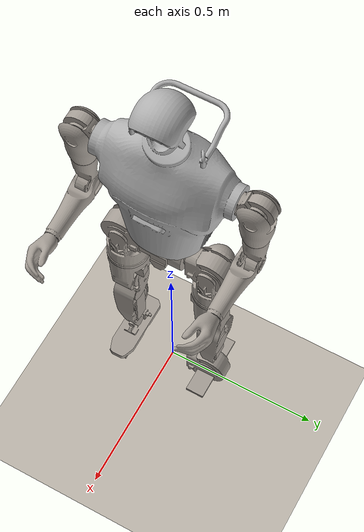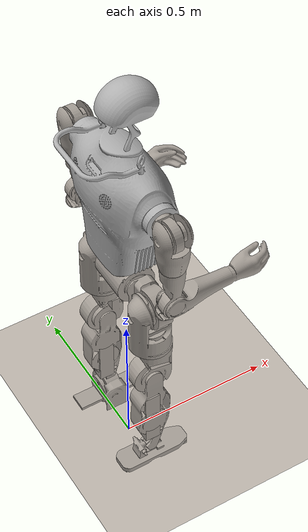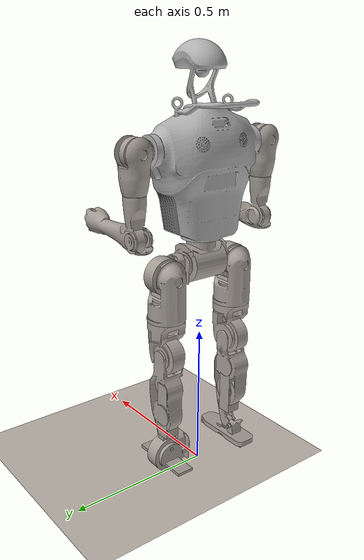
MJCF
<mujoco model="e3 scene">
  <include file="e3.xml"/>

  <statistic center="1.0 0.7 1.0" extent="0.8"/>

  <visual>
    <!-- 保留 headlight 配置（可按需微调） -->
    <headlight diffuse="0.6 0.6 0.6" ambient="0.15 0.15 0.15" specular="0.9 0.9 0.9"/>
    <!-- 让场景雾/大气更淡（可选） -->
    <rgba haze="0.0 0.0 0.0 1"/>
    <!-- 白色天空：把 skybox 的 rgb1/rgb2 设为白 -->
    <global azimuth="-140" elevation="-20"/>
  </visual>

  <asset>
    <!-- white skybox (flat white) -->
    <texture type="skybox" builtin="flat" rgb1="1 1 1" rgb2="1 1 1" width="512" height="3072"/>

    <!-- ground texture from your photo; place flooring2.png next to scene.xml (or use absolute path) -->
    <texture name="floor_tex" type="2d" file="flooring2.png"/>
    <!-- material that uses the texture; texuniform=true 保持纹理颜色不被 RGBA 染色，texrepeat 可调 -->
    <!-- texrepeat 值越小，纹理越大（重复次数越少）；值越大，纹理越小（重复次数越多） -->
    <material name="floor_mat" texture="floor_tex" texuniform="true" texrepeat="1 1" reflectance="0.2"/>

    <!-- 保留以前的 groundplane checker 作为备用（可删） -->
    <texture type="2d" name="groundplane" builtin="checker" mark="edge" rgb1="0.2 0.3 0.4" rgb2="0.1 0.2 0.3" markrgb="0.8 0.8 0.8" width="300" height="300"/>
    <material name="groundplane" texture="groundplane" texuniform="true" texrepeat="5 5" reflectance="0.2"/>
  </asset>

  <worldbody>
    <light pos="1 0 3.5" dir="0 0 -1" directional="true"/>
    <!-- 用 floor_mat 替换原来的 groundplane 材质 -->
    <geom name="floor" size="0 0 0.05" type="plane" material="floor_mat"/>
  </worldbody>
</mujoco>

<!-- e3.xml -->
<mujoco model="e3">
  <compiler angle="radian" meshdir="meshes/"/>

  <asset>
    <mesh name="pelvis" file="pelvis.STL"/>
    <mesh name="torso_link" file="torso_link.STL"/>
    <mesh name="leg_l1_link" file="leg_l1_link.STL"/>
    <mesh name="leg_l2_link_144" file="leg_l2_link_144.STL"/>
    <mesh name="leg_l3_link_144" file="leg_l3_link_144.STL"/>
    <mesh name="leg_l4_link" file="leg_l4_link.STL"/>
    <mesh name="leg_l5_link" file="leg_l5_link.STL"/>
    <mesh name="leg_l6_link" file="leg_l6_link.STL"/>
    <mesh name="leg_r1_link" file="leg_r1_link.STL"/>
    <mesh name="leg_r2_link_144" file="leg_r2_link_144.STL"/>
    <mesh name="leg_r3_link_144" file="leg_r3_link_144.STL"/>
    <mesh name="leg_r4_link" file="leg_r4_link.STL"/>
    <mesh name="leg_r5_link" file="leg_r5_link.STL"/>
    <mesh name="leg_r6_link" file="leg_r6_link.STL"/>
    <mesh name="arm_l1_link" file="arm_l1_link.STL"/>
    <mesh name="arm_l2_link" file="arm_l2_link.STL"/>
    <mesh name="arm_l3_link" file="arm_l3_link.STL"/>
    <mesh name="arm_l4_link" file="arm_l4_link.STL"/>
    <mesh name="arm_r1_link" file="arm_r1_link.STL"/>
    <mesh name="arm_r2_link" file="arm_r2_link.STL"/>
    <mesh name="arm_r3_link" file="arm_r3_link.STL"/>
    <mesh name="arm_r4_link" file="arm_r4_link.STL"/>
  </asset>

  <worldbody>
    <body name="pelvis_link" pos="0 0 0.76">
      <inertial pos="0.00050701 0.000302409 0.0356883" quat="0.999935 -0.0102796 -0.0049011 2.38871e-05" mass="5.12983" diaginertia="0.0228778 0.0195299 0.0120798"/>
      <joint name="floating_base_joint" type="free" limited="false" actuatorfrclimited="false"/>
      <geom type="mesh" contype="0" conaffinity="0" group="1" density="0" rgba="0.64706 0.61961 0.58824 1" mesh="pelvis"/>
      <geom type="mesh" rgba="0.64706 0.61961 0.58824 1" mesh="pelvis"/>
      <geom size="0.0075 0.0075 0.002" type="box" contype="0" conaffinity="0" group="1" density="0"/>

      <body name="left_hip_pitch_link" pos="0 0.1413 0">
        <inertial pos="0.011949 -0.00848 -0.026594" quat="0.79686 0.59057 -0.0942392 0.0857855" mass="1.8169" diaginertia="0.00165401 0.0016345 0.000897494"/>
        <joint name="left_hip_pitch_joint" pos="0 0 0" axis="0 1 0" range="-2.53 2.53" actuatorfrcrange="-144 144"/>
        <geom type="mesh" contype="0" conaffinity="0" group="1" density="0" rgba="0.64706 0.61961 0.58824 1" mesh="leg_l1_link"/>
        <geom type="mesh" rgba="0.64706 0.61961 0.58824 1" mesh="leg_l1_link"/>
        <body name="left_hip_roll_link" pos="0 0 -0.0285">
          <inertial pos="-0.002932 9.8e-05 -0.097396" quat="0.704761 -0.0466741 -0.0480729 0.706273" mass="2.26145" diaginertia="0.00637801 0.00565479 0.00437919"/>
          <joint name="left_hip_roll_joint" pos="0 0 0" axis="1 0 0" range="-0.611 3.23" actuatorfrcrange="-144 144"/>
          <geom type="mesh" contype="0" conaffinity="0" group="1" density="0" rgba="0.64706 0.61961 0.58824 1" mesh="leg_l2_link_144"/>
          <geom type="mesh" rgba="0.64706 0.61961 0.58824 1" mesh="leg_l2_link_144"/>
          <body name="left_hip_yaw_link" pos="0 0 -0.1458">
            <inertial pos="-0.001336 -0.000844 -0.104378" quat="0.678415 0.0561291 0.0503848 0.730797" mass="2.23322" diaginertia="0.00570127 0.00547716 0.00188058"/>
            <joint name="left_hip_yaw_joint" pos="0 0 0" axis="0 0 1" range="-1.05 1.05" actuatorfrcrange="-144 144"/>
            <geom type="mesh" contype="0" conaffinity="0" group="1" density="0" rgba="0.64706 0.61961 0.58824 1" mesh="leg_l3_link_144"/>
            <geom type="mesh" rgba="0.64706 0.61961 0.58824 1" mesh="leg_l3_link_144"/>
            <body name="left_knee_link" pos="-0.008 0 -0.1317">
              <inertial pos="0.001004 0.001585 -0.170623" quat="0.724379 -0.0187492 -0.000974962 0.689146" mass="2.88975" diaginertia="0.0212478 0.0206397 0.0028045"/>
              <joint name="left_knee_joint" pos="0 0 0" axis="0 1 0" range="-0.349 2.355" actuatorfrcrange="-144 144"/>
              <geom type="mesh" contype="0" conaffinity="0" group="1" density="0" rgba="0.64706 0.61961 0.58824 1" mesh="leg_l4_link"/>
              <geom size="0.025 0.025 0.1" pos="0 0 -0.2" type="box" rgba="0.64706 0.61961 0.58824 1"/>
              <body name="left_ankle_pitch_link" pos="0 0 -0.35">
                <inertial pos="0 0 0" quat="0 0.707107 0 0.707107" mass="0.088534" diaginertia="3.1681e-05 3.1274e-05 3.0975e-05"/>
                <joint name="left_ankle_pitch_joint" pos="0 0 0" axis="0 1 0" range="-0.785 1.05" actuatorfrcrange="-48 48"/>
                <geom type="mesh" contype="0" conaffinity="0" group="1" density="0" rgba="0.64706 0.61961 0.58824 1" mesh="leg_l5_link"/>
                <body name="left_ankle_roll_link">
                  <inertial pos="-0.000705 1.4e-05 -0.028746" mass="0.611" diaginertia="0.01 0.01 0.01"/>
                  <joint name="left_ankle_roll_joint" pos="0 0 0" axis="1 0 0" range="-0.26 0.26" actuatorfrcrange="-48 48"/>
                  <geom type="mesh" contype="0" conaffinity="0" group="1" density="0" rgba="0.64706 0.61961 0.58824 1" mesh="leg_l6_link"/>
                  <geom size="0.11 0.03 0.005" pos="0.01 0 -0.05" type="box" rgba="0.64706 0.61961 0.58824 1"/>
                </body>
              </body>
            </body>
          </body>
        </body>
      </body>

      <body name="right_hip_pitch_link" pos="0 -0.1413 0">
        <inertial pos="0.011914 0.008479 -0.026587" quat="0.591283 0.797251 -0.080998 0.0906401" mass="1.81686" diaginertia="0.00165394 0.00163348 0.000895579"/>
        <joint name="right_hip_pitch_joint" pos="0 0 0" axis="0 1 0" range="-2.53 2.53" actuatorfrcrange="-144 144"/>
        <geom type="mesh" contype="0" conaffinity="0" group="1" density="0" rgba="0.64706 0.61961 0.58824 1" mesh="leg_r1_link"/>
        <geom type="mesh" rgba="0.64706 0.61961 0.58824 1" mesh="leg_r1_link"/>
        <body name="right_hip_roll_link" pos="0 0 -0.0285">
          <inertial pos="-0.002874 0.000215 -0.097305" quat="0.70414 -0.0451691 -0.0444057 0.707231" mass="2.02007" diaginertia="0.00639702 0.00566838 0.00439261"/>
          <joint name="right_hip_roll_joint" pos="0 0 0" axis="1 0 0" range="-3.23 0.611" actuatorfrcrange="-144 144"/>
          <geom type="mesh" contype="0" conaffinity="0" group="1" density="0" rgba="0.64706 0.61961 0.58824 1" mesh="leg_r2_link_144"/>
          <geom type="mesh" rgba="0.64706 0.61961 0.58824 1" mesh="leg_r2_link_144"/>
          <body name="right_hip_yaw_link" pos="0 0 -0.1458">
            <inertial pos="0.000912 0.00135 -0.104391" quat="0.996415 0.0754384 0.00360997 -0.0381244" mass="2.23172" diaginertia="0.00569131 0.0054682 0.00187648"/>
            <joint name="right_hip_yaw_joint" pos="0 0 0" axis="0 0 1" range="-1.05 1.05" actuatorfrcrange="-144 144"/>
            <geom type="mesh" contype="0" conaffinity="0" group="1" density="0" rgba="0.64706 0.61961 0.58824 1" mesh="leg_r3_link_144"/>
            <geom type="mesh" rgba="0.64706 0.61961 0.58824 1" mesh="leg_r3_link_144"/>
            <body name="right_knee_link" pos="-0.008 0 -0.1317">
              <inertial pos="-0.001668 -0.001457 -0.178503" quat="0.683345 0.014853 0.00386529 0.729935" mass="2.86629" diaginertia="0.0230219 0.0222035 0.00298067"/>
              <joint name="right_knee_joint" pos="0 0 0" axis="0 1 0" range="-0.349 2.355" actuatorfrcrange="-144 144"/>
              <geom type="mesh" contype="0" conaffinity="0" group="1" density="0" rgba="0.64706 0.61961 0.58824 1" mesh="leg_r4_link"/>
              <geom size="0.025 0.025 0.1" pos="0 0 -0.2" type="box" rgba="0.64706 0.61961 0.58824 1"/>
              <body name="right_ankle_pitch_link" pos="0 0 -0.35">
                <inertial pos="0 0 0" quat="0.5 0.5 0.5 0.5" mass="0.088534" diaginertia="3.1274e-05 3.1274e-05 3.0975e-05"/>
                <joint name="right_ankle_pitch_joint" pos="0 0 0" axis="0 1 0" range="-0.785 1.05" actuatorfrcrange="-48 48"/>
                <geom type="mesh" contype="0" conaffinity="0" group="1" density="0" rgba="0.64706 0.61961 0.58824 1" mesh="leg_r5_link"/>
                <body name="right_ankle_roll_link">
                  <inertial pos="-0.000705 1.4e-05 -0.028746" mass="0.611" diaginertia="0.01 0.01 0.01"/>
                  <joint name="right_ankle_roll_joint" pos="0 0 0" axis="1 0 0" range="-0.26 0.26" actuatorfrcrange="-48 48"/>
                  <geom type="mesh" contype="0" conaffinity="0" group="1" density="0" rgba="0.64706 0.61961 0.58824 1" mesh="leg_r6_link"/>
                  <geom size="0.11 0.03 0.005" pos="0.01 0 -0.05" type="box" rgba="0.64706 0.61961 0.58824 1"/>
                </body>
              </body>
            </body>
          </body>
        </body>
      </body>

      <body name="torso_link" pos="0 0 0.3763">
        <inertial pos="-0.006939 -0.002038 -0.085719" quat="0.999832 -0.0171582 -0.0028241 0.00581938" mass="13.7596" diaginertia="0.327512 0.269633 0.140296"/>
        <joint name="waist_joint" pos="0 0 0" axis="0 0 1" range="-1.57 1.57" actuatorfrcrange="-144 144"/>
        <geom type="mesh" contype="0" conaffinity="0" group="1" density="0" rgba="0.7 0.7 0.7 1" mesh="torso_link"/>
        <geom type="mesh" rgba="0.7 0.7 0.7 1" mesh="torso_link"/>

        <body name="left_shoulder_pitch_link" pos="0 0.25799 0">
          <inertial pos="-0.003432 -0.009458 -0.00891" quat="0.728115 0.68378 -0.0143705 0.0456788" mass="0.859213" diaginertia="0.00125221 0.000974681 0.00058711"/>
          <joint name="left_shoulder_pitch_joint" pos="0 0 0" axis="0 1 0" range="-2.74 1.96" actuatorfrcrange="-24 24"/>
          <geom type="mesh" contype="0" conaffinity="0" group="1" density="0" rgba="0.64706 0.61961 0.58824 1" mesh="arm_l1_link"/>
          <body name="left_shoulder_roll_link">
            <inertial pos="0.004195 0.000475 -0.057018" quat="0.917068 -0.0639751 0.118814 -0.375203" mass="0.701407" diaginertia="0.00168817 0.00152649 0.000925343"/>
            <joint name="left_shoulder_roll_joint" pos="0 0 0" axis="1 0 0" range="-0.17 3.01" actuatorfrcrange="-24 24"/>
            <geom type="mesh" contype="0" conaffinity="0" group="1" density="0" rgba="0.64706 0.61961 0.58824 1" mesh="arm_l2_link"/>
            <body name="left_shoulder_yaw_link" pos="0 0 -0.1019">
              <inertial pos="-0.000223 0.000795 -0.127372" quat="0.682095 -0.0340813 -0.0310588 0.729809" mass="0.541958" diaginertia="0.00184991 0.00143084 0.000637242"/>
              <joint name="left_shoulder_yaw_joint" pos="0 0 0" axis="0 0 1" range="-3.14 1.57" actuatorfrcrange="-5 5"/>
              <geom type="mesh" contype="0" conaffinity="0" group="1" density="0" rgba="0.64706 0.61961 0.58824 1" mesh="arm_l3_link"/>
              <geom type="mesh" rgba="0.64706 0.61961 0.58824 1" mesh="arm_l3_link"/>
              <body name="left_elbow_link" pos="0 -0.0062 -0.1616">
                <inertial pos="0.103629 0.001055 -0.003321" quat="0.0787841 0.685787 0.0743799 0.719693" mass="0.368568" diaginertia="0.00288551 0.00287659 0.000274901"/>
                <joint name="left_elbow_joint" pos="0 0 0" axis="0 1 0" range="-0.9 1.57" actuatorfrcrange="-5 5"/>
                <geom type="mesh" contype="0" conaffinity="0" group="1" density="0" rgba="0.64706 0.61961 0.58824 1" mesh="arm_l4_link"/>
                <geom type="mesh" rgba="0.64706 0.61961 0.58824 1" mesh="arm_l4_link"/>
              </body>
            </body>
          </body>
        </body>

        <body name="right_shoulder_pitch_link" pos="0 -0.25799 0">
          <inertial pos="-0.003672 0.009404 -0.000747" quat="0.693866 0.719138 -0.0366671 0.00678126" mass="0.870023" diaginertia="0.00128128 0.00100559 0.000565134"/>
          <joint name="right_shoulder_pitch_joint" pos="0 0 0" axis="0 1 0" range="-2.74 1.96" actuatorfrcrange="-24 24"/>
          <geom type="mesh" contype="0" conaffinity="0" group="1" density="0" rgba="0.64706 0.61961 0.58824 1" mesh="arm_r1_link"/>
          <body name="right_shoulder_roll_link">
            <inertial pos="0.004341 -0.000257 -0.056511" quat="0.99066 0.0311321 0.130625 0.0236849" mass="0.712915" diaginertia="0.00164459 0.00142526 0.00112415"/>
            <joint name="right_shoulder_roll_joint" pos="0 0 0" axis="1 0 0" range="-3.01 0.17" actuatorfrcrange="-24 24"/>
            <geom type="mesh" contype="0" conaffinity="0" group="1" density="0" rgba="0.64706 0.61961 0.58824 1" mesh="arm_r2_link"/>
            <body name="right_shoulder_yaw_link" pos="0 0 -0.1019">
              <inertial pos="-0.00014 -0.000801 -0.127387" quat="0.728137 0.00458296 -0.00489886 0.685399" mass="0.541111" diaginertia="0.00183779 0.00140643 0.000642785"/>
              <joint name="right_shoulder_yaw_joint" pos="0 0 0" axis="0 0 1" range="-1.57 3.14" actuatorfrcrange="-5 5"/>
              <geom type="mesh" contype="0" conaffinity="0" group="1" density="0" rgba="0.64706 0.61961 0.58824 1" mesh="arm_r3_link"/>
              <geom type="mesh" rgba="0.64706 0.61961 0.58824 1" mesh="arm_r3_link"/>
              <body name="right_elbow_link" pos="0 0.0062 -0.1616">
                <inertial pos="0.103611 -0.001052 -0.003324" quat="-0.0882129 0.684752 -0.0833648 0.718598" mass="0.368568" diaginertia="0.00288556 0.00287754 0.000274901"/>
                <joint name="right_elbow_joint" pos="0 0 0" axis="0 1 0" range="-0.9 1.57" actuatorfrcrange="-5 5"/>
                <geom type="mesh" contype="0" conaffinity="0" group="1" density="0" rgba="0.64706 0.61961 0.58824 1" mesh="arm_r4_link"/>
                <geom type="mesh" rgba="0.64706 0.61961 0.58824 1" mesh="arm_r4_link"/>
              </body>
            </body>
          </body>
        </body>
      </body>

    </body>
  </worldbody>

  <actuator>
  <motor name="left_hip_pitch_joint" joint="left_hip_pitch_joint"/>
  <motor name="left_hip_roll_joint" joint="left_hip_roll_joint"/>
  <motor name="left_hip_yaw_joint" joint="left_hip_yaw_joint"/>
  <motor name="left_knee_joint" joint="left_knee_joint"/>
  <motor name="left_ankle_pitch_joint" joint="left_ankle_pitch_joint"/>
  <motor name="left_ankle_roll_joint" joint="left_ankle_roll_joint"/>
  <motor name="right_hip_pitch_joint" joint="right_hip_pitch_joint"/>
  <motor name="right_hip_roll_joint" joint="right_hip_roll_joint"/>
  <motor name="right_hip_yaw_joint" joint="right_hip_yaw_joint"/>
  <motor name="right_knee_joint" joint="right_knee_joint"/>
  <motor name="right_ankle_pitch_joint" joint="right_ankle_pitch_joint"/>
  <motor name="right_ankle_roll_joint" joint="right_ankle_roll_joint"/>

  <motor name="waist_joint" joint="waist_joint"/>

  <motor name="left_shoulder_pitch_joint" joint="left_shoulder_pitch_joint"/>
  <motor name="left_shoulder_roll_joint" joint="left_shoulder_roll_joint"/>
  <motor name="left_shoulder_yaw_joint" joint="left_shoulder_yaw_joint"/>
  <motor name="left_elbow_joint" joint="left_elbow_joint"/>
  <motor name="right_shoulder_pitch_joint" joint="right_shoulder_pitch_joint"/>
  <motor name="right_shoulder_roll_joint" joint="right_shoulder_roll_joint"/>
  <motor name="right_shoulder_yaw_joint" joint="right_shoulder_yaw_joint"/>
  <motor name="right_elbow_joint" joint="right_elbow_joint"/>
  </actuator>
</mujoco>
